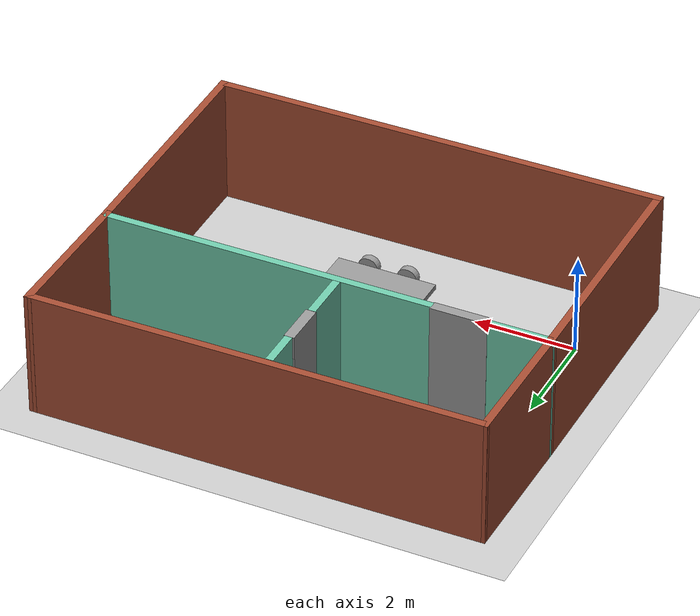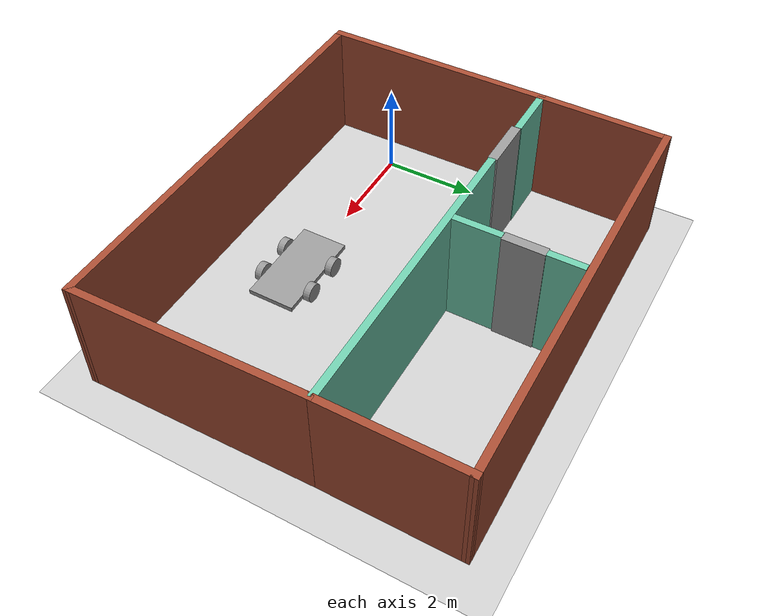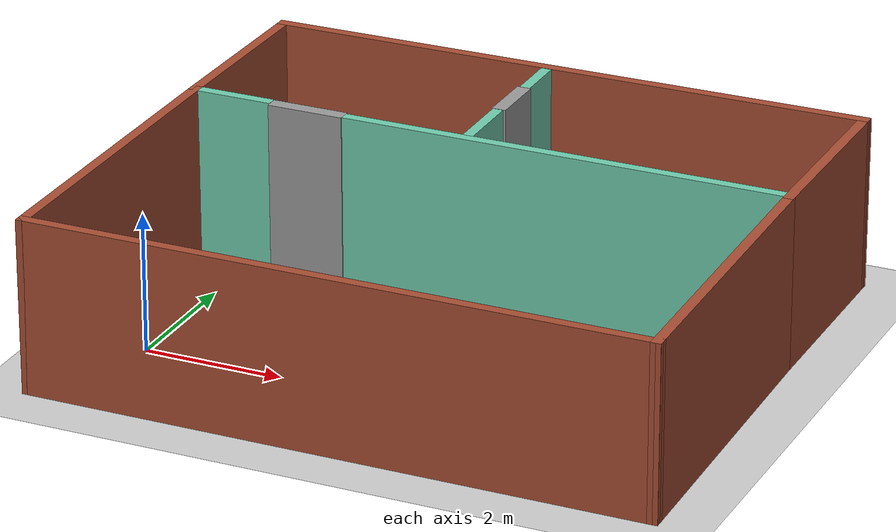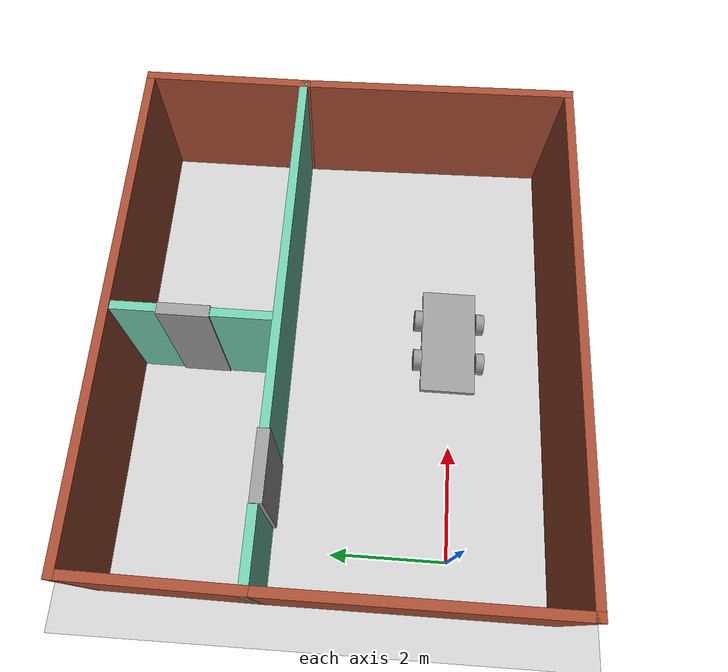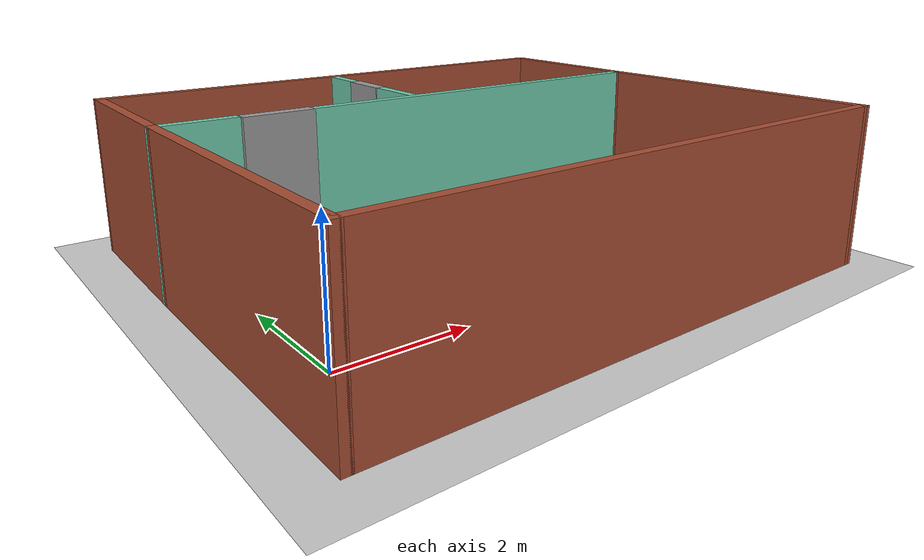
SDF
<sdf version="1.6">
 <world name="default">
  <plugin name="welcome" filename="libwelcome.so"/>
  <light name="sun" type="directional">
   <pose>0 0 10 0 -0 0</pose>
   <diffuse>0.8 0.8 0.8 1</diffuse>
   <specular>0.2 0.2 0.2 1</specular>
   <attenuation>
    <range>1000</range>
    <constant>0.9</constant>
    <linear>0.01</linear>
    <quadratic>0.001</quadratic>
   </attenuation>
   <direction>-0.5 0.1 -0.9</direction>
  </light>
  <model name="ground_plane">
   <static>1</static>
   <link name="link">
    <collision name="collision">
     <geometry><plane><normal>0 0 1</normal><size>100 100</size></plane></geometry>
     <surface>
      <contact><collide_bitmask>65535</collide_bitmask></contact>
      <friction><ode><mu>100</mu><mu2>50</mu2></ode></friction>
     </surface>
    </collision>
    <visual name="visual">
     <cast_shadows>0</cast_shadows>
     <geometry><plane><normal>0 0 1</normal><size>100 100</size></plane></geometry>
     <material>
      <script><uri>file://media/materials/scripts/gazebo.material</uri><name>Gazebo/Grey</name></script>
     </material>
    </visual>
   </link>
  </model>
  <gravity>0 0 -9.8</gravity>
  <magnetic_field>6e-06 2.3e-05 -4.2e-05</magnetic_field>
  <atmosphere type="adiabatic"/>
  <physics name="default_physics" default="0" type="ode">
   <max_step_size>0.001</max_step_size>
   <real_time_factor>1</real_time_factor>
   <real_time_update_rate>1000</real_time_update_rate>
  </physics>
  <scene><ambient>0.4 0.4 0.4 1</ambient><background>0.7 0.7 0.7 1</background><shadows>1</shadows></scene>
  <spherical_coordinates>
   <surface_model>EARTH_WGS84</surface_model>
   <latitude_deg>0</latitude_deg>
   <longitude_deg>0</longitude_deg>
   <elevation>0</elevation>
   <heading_deg>0</heading_deg>
  </spherical_coordinates>
  <model name="Gazebo_Building">
   <pose>3.62496 2.04334 0 0 -0 0</pose>
   <link name="Door_4">
    <collision name="Door_4_Collision">
     <geometry><box><size>1.107 0.2 2.5</size></box></geometry>
     <pose>0 0 1.25 0 -0 0</pose>
    </collision>
    <visual name="Door_4_Visual">
     <pose>0 0 1.25 0 -0 0</pose>
     <geometry><box><size>1.107 0.2 2.5</size></box></geometry>
     <material>
      <script><uri>file://media/materials/scripts/gazebo.material</uri><name>Gazebo/Grey</name></script>
     </material>
    </visual>
    <pose>-2.69159 1.00921 0 0 -0 0</pose>
   </link>
   <link name="Door_5">
    <collision name="Door_5_Collision">
     <geometry><box><size>0.858492 0.2 2.5</size></box></geometry>
     <pose>0 0 1.25 0 -0 0</pose>
    </collision>
    <visual name="Door_5_Visual">
     <pose>0 0 1.25 0 -0 0</pose>
     <geometry><box><size>0.858492 0.2 2.5</size></box></geometry>
     <material>
      <script><uri>file://media/materials/scripts/gazebo.material</uri><name>Gazebo/Grey</name></script>
     </material>
    </visual>
    <pose>-0.313232 2.50609 0 0 0 -1.57557</pose>
   </link>
   <link name="Wall_20">
    <collision name="Wall_20_Collision">
     <geometry><box><size>8.88603 0.15 2.5</size></box></geometry>
     <pose>0 0 1.25 0 -0 0</pose>
    </collision>
    <visual name="Wall_20_Visual">
     <pose>0 0 1.25 0 -0 0</pose>
     <geometry><box><size>8.88603 0.15 2.5</size></box></geometry>
     <material>
      <script><uri>file://media/materials/scripts/gazebo.material</uri><name>Gazebo/Bricks</name></script>
      <ambient>0.996078 0.47451 0.0196078 1</ambient>
     </material>
     <meta><layer>0</layer></meta>
    </visual>
    <pose>-0.02841 3.76935 0 0 0 -3.13305</pose>
   </link>
   <link name="Wall_21">
    <collision name="Wall_21_Collision">
     <geometry><box><size>2.83816 0.15 2.5</size></box></geometry>
     <pose>0 0 1.25 0 -0 0</pose>
    </collision>
    <visual name="Wall_21_Visual">
     <pose>0 0 1.25 0 -0 0</pose>
     <geometry><box><size>2.83816 0.15 2.5</size></box></geometry>
     <material>
      <script><uri>file://media/materials/scripts/gazebo.material</uri><name>Gazebo/Bricks</name></script>
      <ambient>0.996078 0.47451 0.0196078 1</ambient>
     </material>
     <meta><layer>0</layer></meta>
    </visual>
    <pose>-4.41076 2.38803 0 0 0 -1.58159</pose>
   </link>
   <link name="Wall_22">
    <collision name="Wall_22_Collision">
     <geometry><box><size>1.25 0.15 2.5</size></box></geometry>
     <pose>0 0 1.2495 0 -0 0</pose>
    </collision>
    <visual name="Wall_22_Visual">
     <pose>0 0 1.2495 0 -0 0</pose>
     <geometry><box><size>1.25 0.15 2.5</size></box></geometry>
     <material>
      <script><uri>file://media/materials/scripts/gazebo.material</uri><name>Gazebo/Grey</name></script>
      <ambient>0.435294 0.796078 0.67451 1</ambient>
     </material>
     <meta><layer>0</layer></meta>
    </visual>
    <pose>-3.87526 1.04403 0 0 -0 0</pose>
   </link>
   <link name="Wall_24">
    <collision name="Wall_24_Collision">
     <geometry><box><size>1 0.15 2.5</size></box></geometry>
     <pose>0 0 1.25 0 -0 0</pose>
    </collision>
    <visual name="Wall_24_Visual">
     <pose>0 0 1.25 0 -0 0</pose>
     <geometry><box><size>1 0.15 2.5</size></box></geometry>
     <material>
      <script><uri>file://media/materials/scripts/gazebo.material</uri><name>Gazebo/Grey</name></script>
      <ambient>0.435294 0.796078 0.67451 1</ambient>
     </material>
     <meta><layer>0</layer></meta>
    </visual>
    <pose>-0.322639 1.5729 0 0 -0 1.5708</pose>
   </link>
   <link name="Wall_26">
    <collision name="Wall_26_Collision">
     <geometry><box><size>0.75 0.15 2.5</size></box></geometry>
     <pose>0 0 1.25 0 -0 0</pose>
    </collision>
    <visual name="Wall_26_Visual">
     <pose>0 0 1.25 0 -0 0</pose>
     <geometry><box><size>0.75 0.15 2.5</size></box></geometry>
     <material>
      <script><uri>file://media/materials/scripts/gazebo.material</uri><name>Gazebo/Grey</name></script>
      <ambient>0.435294 0.796078 0.67451 1</ambient>
     </material>
     <meta><layer>0</layer></meta>
    </visual>
    <pose>-0.304263 3.30803 0 0 -0 1.5708</pose>
   </link>
   <link name="Wall_28">
    <collision name="Wall_28_Collision">
     <geometry><box><size>3 0.15 2.5</size></box></geometry>
     <pose>0 0 1.25 0 -0 0</pose>
    </collision>
    <visual name="Wall_28_Visual">
     <pose>0 0 1.25 0 -0 0</pose>
     <geometry><box><size>3 0.15 2.5</size></box></geometry>
     <material>
      <script><uri>file://media/materials/scripts/gazebo.material</uri><name>Gazebo/Bricks</name></script>
      <ambient>0.996078 0.47451 0.0196078 1</ambient>
     </material>
     <meta><layer>0</layer></meta>
    </visual>
    <pose>4.33944 2.38166 0 0 -0 1.5708</pose>
   </link>
   <link name="Wall_32">
    <collision name="Wall_32_Collision">
     <geometry><box><size>5 0.15 2.5</size></box></geometry>
     <pose>0 0 1.25 0 -0 0</pose>
    </collision>
    <visual name="Wall_32_Visual">
     <pose>0 0 1.25 0 -0 0</pose>
     <geometry><box><size>5 0.15 2.5</size></box></geometry>
     <material>
      <script><uri>file://media/materials/scripts/gazebo.material</uri><name>Gazebo/Bricks</name></script>
      <ambient>0.435294 0.796078 0.67451 1</ambient>
     </material>
     <meta><layer>0</layer></meta>
    </visual>
    <pose>-4.42526 -1.38097 0 0 0 -1.5708</pose>
   </link>
   <link name="Wall_36">
    <collision name="Wall_36_Collision">
     <geometry><box><size>6.5 0.15 2.5</size></box></geometry>
     <pose>0 0 1.25 0 -0 0</pose>
    </collision>
    <visual name="Wall_36_Visual">
     <pose>0 0 1.25 0 -0 0</pose>
     <geometry><box><size>6.5 0.15 2.5</size></box></geometry>
     <material>
      <script><uri>file://media/materials/scripts/gazebo.material</uri><name>Gazebo/Grey</name></script>
      <ambient>0.435294 0.796078 0.67451 1</ambient>
     </material>
     <meta><layer>0</layer></meta>
    </visual>
    <pose>1.09813 1.0022 0 0 -0 0</pose>
   </link>
   <link name="Wall_39">
    <collision name="Wall_39_Collision">
     <geometry><box><size>9 0.15 2.5</size></box></geometry>
     <pose>0 0 1.25 0 -0 0</pose>
    </collision>
    <visual name="Wall_39_Visual">
     <pose>0 0 1.25 0 -0 0</pose>
     <geometry><box><size>9 0.15 2.5</size></box></geometry>
     <material>
      <script><uri>file://media/materials/scripts/gazebo.material</uri><name>Gazebo/Bricks</name></script>
      <ambient>0.435294 0.796078 0.67451 1</ambient>
     </material>
     <meta><layer>0</layer></meta>
    </visual>
    <pose>-0.000263 -3.80597 0 0 -0 0</pose>
   </link>
   <link name="Wall_40">
    <collision name="Wall_40_Collision">
     <geometry><box><size>4.9134 0.15 2.5</size></box></geometry>
     <pose>0 0 1.25 0 -0 0</pose>
    </collision>
    <visual name="Wall_40_Visual">
     <pose>0 0 1.25 0 -0 0</pose>
     <geometry><box><size>4.9134 0.15 2.5</size></box></geometry>
     <material>
      <script><uri>file://media/materials/scripts/gazebo.material</uri><name>Gazebo/Bricks</name></script>
      <ambient>0.435294 0.796078 0.67451 1</ambient>
     </material>
     <meta><layer>0</layer></meta>
    </visual>
    <pose>4.38209 -1.42465 0 0 -0 1.5887</pose>
   </link>
   <static>1</static>
  </model>
  <model name="myrobot">
   <link name="link_4">
    <inertial>
     <mass>1</mass>
     <inertia>
      <ixx>0.166667</ixx>
      <ixy>0</ixy>
      <ixz>0</ixz>
      <iyy>0.166667</iyy>
      <iyz>0</iyz>
      <izz>0.166667</izz>
     </inertia>
    </inertial>
    <visual name="visual">
     <geometry><box><size>2 1 0.1</size></box></geometry>
     <material>
      <lighting>1</lighting>
      <script><uri>file://media/materials/scripts/gazebo.material</uri><name>Gazebo/Grey</name></script>
      <shader type="pixel"><normal_map>__default__</normal_map></shader>
      <ambient>0.3 0.3 0.3 1</ambient>
      <diffuse>0.7 0.7 0.7 1</diffuse>
      <specular>0.01 0.01 0.01 1</specular>
      <emissive>0 0 0 1</emissive>
     </material>
    </visual>
    <collision name="collision">
     <geometry><box><size>2 1 0.1</size></box></geometry>
     <surface>
      <friction>
       <ode><mu>1</mu><mu2>1</mu2><fdir1>0 0 0</fdir1><slip1>0</slip1><slip2>0</slip2></ode>
       <torsional>
        <coefficient>1</coefficient>
        <patch_radius>0</patch_radius>
        <surface_radius>0</surface_radius>
        <use_patch_radius>1</use_patch_radius>
        <ode><slip>0</slip></ode>
       </torsional>
      </friction>
      <bounce><restitution_coefficient>0</restitution_coefficient><threshold>1e+06</threshold></bounce>
      <contact>
       <collide_without_contact>0</collide_without_contact>
       <collide_without_contact_bitmask>1</collide_without_contact_bitmask>
       <collide_bitmask>1</collide_bitmask>
       <ode>
        <soft_cfm>0</soft_cfm>
        <soft_erp>0.2</soft_erp>
        <kp>1e+13</kp>
        <kd>1</kd>
        <max_vel>0.01</max_vel>
        <min_depth>0</min_depth>
       </ode>
       <bullet>
        <split_impulse>1</split_impulse>
        <split_impulse_penetration_threshold>-0.01</split_impulse_penetration_threshold>
        <soft_cfm>0</soft_cfm>
        <soft_erp>0.2</soft_erp>
        <kp>1e+13</kp>
        <kd>1</kd>
       </bullet>
      </contact>
     </surface>
    </collision>
   </link>
   <link name="link_5">
    <pose>0.4 -0.575019 0 1.5707 -0 0</pose>
    <inertial>
     <mass>1</mass>
     <inertia><ixx>0.145833</ixx><ixy>0</ixy><ixz>0</ixz><iyy>0.145833</iyy><iyz>0</iyz><izz>0.125</izz></inertia>
    </inertial>
    <visual name="visual">
     <geometry><cylinder><radius>0.2</radius><length>0.15</length></cylinder></geometry>
     <material>
      <lighting>1</lighting>
      <script><uri>file://media/materials/scripts/gazebo.material</uri><name>Gazebo/Grey</name></script>
      <shader type="pixel"><normal_map>__default__</normal_map></shader>
      <ambient>0.3 0.3 0.3 1</ambient>
      <diffuse>0.7 0.7 0.7 1</diffuse>
      <specular>0.01 0.01 0.01 1</specular>
      <emissive>0 0 0 1</emissive>
     </material>
    </visual>
    <collision name="collision">
     <geometry><cylinder><radius>0.2</radius><length>0.15</length></cylinder></geometry>
     <surface>
      <friction>
       <ode><mu>1</mu><mu2>1</mu2><fdir1>0 0 0</fdir1><slip1>0</slip1><slip2>0</slip2></ode>
       <torsional>
        <coefficient>1</coefficient>
        <patch_radius>0</patch_radius>
        <surface_radius>0</surface_radius>
        <use_patch_radius>1</use_patch_radius>
        <ode><slip>0</slip></ode>
       </torsional>
      </friction>
      <bounce><restitution_coefficient>0</restitution_coefficient><threshold>1e+06</threshold></bounce>
      <contact>
       <collide_without_contact>0</collide_without_contact>
       <collide_without_contact_bitmask>1</collide_without_contact_bitmask>
       <collide_bitmask>1</collide_bitmask>
       <ode>
        <soft_cfm>0</soft_cfm>
        <soft_erp>0.2</soft_erp>
        <kp>1e+13</kp>
        <kd>1</kd>
        <max_vel>0.01</max_vel>
        <min_depth>0</min_depth>
       </ode>
       <bullet>
        <split_impulse>1</split_impulse>
        <split_impulse_penetration_threshold>-0.01</split_impulse_penetration_threshold>
        <soft_cfm>0</soft_cfm>
        <soft_erp>0.2</soft_erp>
        <kp>1e+13</kp>
        <kd>1</kd>
       </bullet>
      </contact>
     </surface>
    </collision>
   </link>
   <link name="link_5_clone">
    <pose>-0.4 -0.575019 0 1.5707 -0 0</pose>
    <inertial>
     <mass>1</mass>
     <inertia><ixx>0.145833</ixx><ixy>0</ixy><ixz>0</ixz><iyy>0.145833</iyy><iyz>0</iyz><izz>0.125</izz></inertia>
    </inertial>
    <visual name="visual">
     <geometry><cylinder><radius>0.2</radius><length>0.15</length></cylinder></geometry>
     <material>
      <lighting>1</lighting>
      <script><uri>file://media/materials/scripts/gazebo.material</uri><name>Gazebo/Grey</name></script>
      <shader type="pixel"><normal_map>__default__</normal_map></shader>
      <ambient>0.3 0.3 0.3 1</ambient>
      <diffuse>0.7 0.7 0.7 1</diffuse>
      <specular>0.01 0.01 0.01 1</specular>
      <emissive>0 0 0 1</emissive>
     </material>
    </visual>
    <collision name="collision">
     <geometry><cylinder><radius>0.2</radius><length>0.15</length></cylinder></geometry>
     <surface>
      <friction>
       <ode><mu>1</mu><mu2>1</mu2><fdir1>0 0 0</fdir1><slip1>0</slip1><slip2>0</slip2></ode>
       <torsional>
        <coefficient>1</coefficient>
        <patch_radius>0</patch_radius>
        <surface_radius>0</surface_radius>
        <use_patch_radius>1</use_patch_radius>
        <ode><slip>0</slip></ode>
       </torsional>
      </friction>
      <bounce><restitution_coefficient>0</restitution_coefficient><threshold>1e+06</threshold></bounce>
      <contact>
       <collide_without_contact>0</collide_without_contact>
       <collide_without_contact_bitmask>1</collide_without_contact_bitmask>
       <collide_bitmask>1</collide_bitmask>
       <ode>
        <soft_cfm>0</soft_cfm>
        <soft_erp>0.2</soft_erp>
        <kp>1e+13</kp>
        <kd>1</kd>
        <max_vel>0.01</max_vel>
        <min_depth>0</min_depth>
       </ode>
       <bullet>
        <split_impulse>1</split_impulse>
        <split_impulse_penetration_threshold>-0.01</split_impulse_penetration_threshold>
        <soft_cfm>0</soft_cfm>
        <soft_erp>0.2</soft_erp>
        <kp>1e+13</kp>
        <kd>1</kd>
       </bullet>
      </contact>
     </surface>
    </collision>
   </link>
   <link name="link_5_clone_0">
    <pose>-0.4 0.575019 0 1.5707 -0 0</pose>
    <inertial>
     <mass>1</mass>
     <inertia><ixx>0.145833</ixx><ixy>0</ixy><ixz>0</ixz><iyy>0.145833</iyy><iyz>0</iyz><izz>0.125</izz></inertia>
    </inertial>
    <visual name="visual">
     <geometry><cylinder><radius>0.2</radius><length>0.15</length></cylinder></geometry>
     <material>
      <lighting>1</lighting>
      <script><uri>file://media/materials/scripts/gazebo.material</uri><name>Gazebo/Grey</name></script>
      <shader type="pixel"><normal_map>__default__</normal_map></shader>
      <ambient>0.3 0.3 0.3 1</ambient>
      <diffuse>0.7 0.7 0.7 1</diffuse>
      <specular>0.01 0.01 0.01 1</specular>
      <emissive>0 0 0 1</emissive>
     </material>
    </visual>
    <collision name="collision">
     <geometry><cylinder><radius>0.2</radius><length>0.15</length></cylinder></geometry>
     <surface>
      <friction>
       <ode><mu>1</mu><mu2>1</mu2><fdir1>0 0 0</fdir1><slip1>0</slip1><slip2>0</slip2></ode>
       <torsional>
        <coefficient>1</coefficient>
        <patch_radius>0</patch_radius>
        <surface_radius>0</surface_radius>
        <use_patch_radius>1</use_patch_radius>
        <ode><slip>0</slip></ode>
       </torsional>
      </friction>
      <bounce><restitution_coefficient>0</restitution_coefficient><threshold>1e+06</threshold></bounce>
      <contact>
       <collide_without_contact>0</collide_without_contact>
       <collide_without_contact_bitmask>1</collide_without_contact_bitmask>
       <collide_bitmask>1</collide_bitmask>
       <ode>
        <soft_cfm>0</soft_cfm>
        <soft_erp>0.2</soft_erp>
        <kp>1e+13</kp>
        <kd>1</kd>
        <max_vel>0.01</max_vel>
        <min_depth>0</min_depth>
       </ode>
       <bullet>
        <split_impulse>1</split_impulse>
        <split_impulse_penetration_threshold>-0.01</split_impulse_penetration_threshold>
        <soft_cfm>0</soft_cfm>
        <soft_erp>0.2</soft_erp>
        <kp>1e+13</kp>
        <kd>1</kd>
       </bullet>
      </contact>
     </surface>
    </collision>
   </link>
   <link name="link_5_clone_1">
    <pose>0.4 0.575019 0 1.5707 -0 0</pose>
    <inertial>
     <mass>1</mass>
     <inertia><ixx>0.145833</ixx><ixy>0</ixy><ixz>0</ixz><iyy>0.145833</iyy><iyz>0</iyz><izz>0.125</izz></inertia>
    </inertial>
    <visual name="visual">
     <geometry><cylinder><radius>0.2</radius><length>0.15</length></cylinder></geometry>
     <material>
      <lighting>1</lighting>
      <script><uri>file://media/materials/scripts/gazebo.material</uri><name>Gazebo/Grey</name></script>
      <shader type="pixel"><normal_map>__default__</normal_map></shader>
      <ambient>0.3 0.3 0.3 1</ambient>
      <diffuse>0.7 0.7 0.7 1</diffuse>
      <specular>0.01 0.01 0.01 1</specular>
      <emissive>0 0 0 1</emissive>
     </material>
    </visual>
    <collision name="collision">
     <geometry><cylinder><radius>0.2</radius><length>0.15</length></cylinder></geometry>
     <surface>
      <friction>
       <ode><mu>1</mu><mu2>1</mu2><fdir1>0 0 0</fdir1><slip1>0</slip1><slip2>0</slip2></ode>
       <torsional>
        <coefficient>1</coefficient>
        <patch_radius>0</patch_radius>
        <surface_radius>0</surface_radius>
        <use_patch_radius>1</use_patch_radius>
        <ode><slip>0</slip></ode>
       </torsional>
      </friction>
      <bounce><restitution_coefficient>0</restitution_coefficient><threshold>1e+06</threshold></bounce>
      <contact>
       <collide_without_contact>0</collide_without_contact>
       <collide_without_contact_bitmask>1</collide_without_contact_bitmask>
       <collide_bitmask>1</collide_bitmask>
       <ode>
        <soft_cfm>0</soft_cfm>
        <soft_erp>0.2</soft_erp>
        <kp>1e+13</kp>
        <kd>1</kd>
        <max_vel>0.01</max_vel>
        <min_depth>0</min_depth>
       </ode>
       <bullet>
        <split_impulse>1</split_impulse>
        <split_impulse_penetration_threshold>-0.01</split_impulse_penetration_threshold>
        <soft_cfm>0</soft_cfm>
        <soft_erp>0.2</soft_erp>
        <kp>1e+13</kp>
        <kd>1</kd>
       </bullet>
      </contact>
     </surface>
    </collision>
   </link>
   <joint name="link_4_JOINT_10" type="revolute">
    <parent>link_4</parent>
    <child>link_5_clone_1</child>
    <axis>
     <xyz>0 0 1</xyz>
     <use_parent_model_frame>0</use_parent_model_frame>
     <limit>
      <lower>-1.79769e+308</lower>
      <upper>1.79769e+308</upper>
      <effort>-1</effort>
      <velocity>-1</velocity>
     </limit>
     <dynamics>
      <spring_reference>0</spring_reference>
      <spring_stiffness>0</spring_stiffness>
      <damping>0</damping>
     </dynamics>
    </axis>
    <physics>
     <ode><limit><cfm>0</cfm><erp>0.2</erp></limit><suspension><cfm>0</cfm><erp>0.2</erp></suspension></ode>
    </physics>
   </joint>
   <joint name="link_4_JOINT_11" type="revolute">
    <parent>link_4</parent>
    <child>link_5</child>
    <axis>
     <xyz>0 0 1</xyz>
     <use_parent_model_frame>0</use_parent_model_frame>
     <limit>
      <lower>-1.79769e+308</lower>
      <upper>1.79769e+308</upper>
      <effort>-1</effort>
      <velocity>-1</velocity>
     </limit>
     <dynamics>
      <spring_reference>0</spring_reference>
      <spring_stiffness>0</spring_stiffness>
      <damping>0</damping>
     </dynamics>
    </axis>
    <physics>
     <ode><limit><cfm>0</cfm><erp>0.2</erp></limit><suspension><cfm>0</cfm><erp>0.2</erp></suspension></ode>
    </physics>
   </joint>
   <joint name="link_4_JOINT_7" type="revolute">
    <parent>link_4</parent>
    <child>link_5_clone</child>
    <axis>
     <xyz>0 0 1</xyz>
     <use_parent_model_frame>0</use_parent_model_frame>
     <limit>
      <lower>-1.79769e+308</lower>
      <upper>1.79769e+308</upper>
      <effort>-1</effort>
      <velocity>-1</velocity>
     </limit>
     <dynamics>
      <spring_reference>0</spring_reference>
      <spring_stiffness>0</spring_stiffness>
      <damping>0</damping>
     </dynamics>
    </axis>
    <physics>
     <ode><limit><cfm>0</cfm><erp>0.2</erp></limit><suspension><cfm>0</cfm><erp>0.2</erp></suspension></ode>
    </physics>
   </joint>
   <joint name="link_4_JOINT_9" type="revolute">
    <parent>link_4</parent>
    <child>link_5_clone_0</child>
    <axis>
     <xyz>0 0 1</xyz>
     <use_parent_model_frame>0</use_parent_model_frame>
     <limit>
      <lower>-1.79769e+308</lower>
      <upper>1.79769e+308</upper>
      <effort>-1</effort>
      <velocity>-1</velocity>
     </limit>
     <dynamics>
      <spring_reference>0</spring_reference>
      <spring_stiffness>0</spring_stiffness>
      <damping>0</damping>
     </dynamics>
    </axis>
    <physics>
     <ode><limit><cfm>0</cfm><erp>0.2</erp></limit><suspension><cfm>0</cfm><erp>0.2</erp></suspension></ode>
    </physics>
   </joint>
   <static>0</static>
   <pose>3.99824 0.057369 0.200004 -1e-06 8e-06 -0.00453</pose>
  </model>
 </world>
</sdf>
